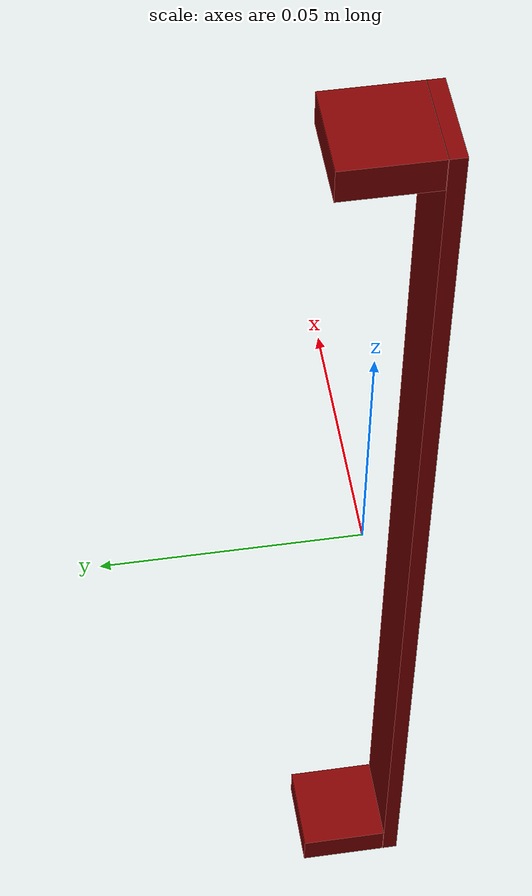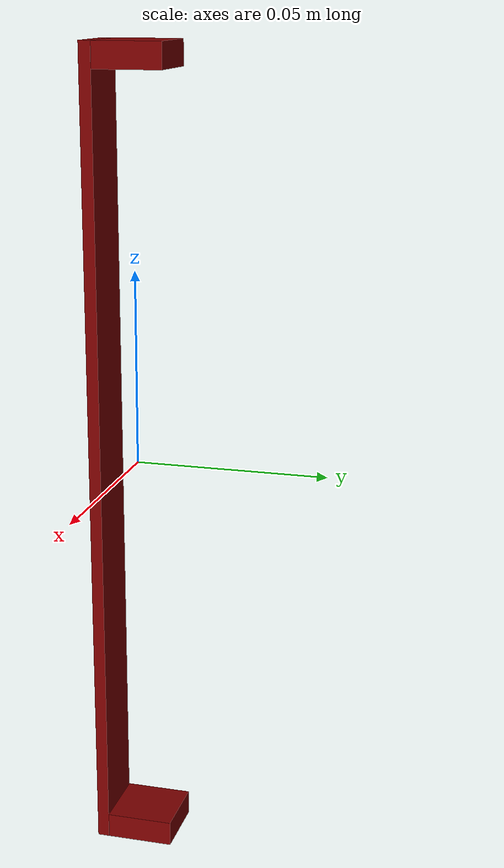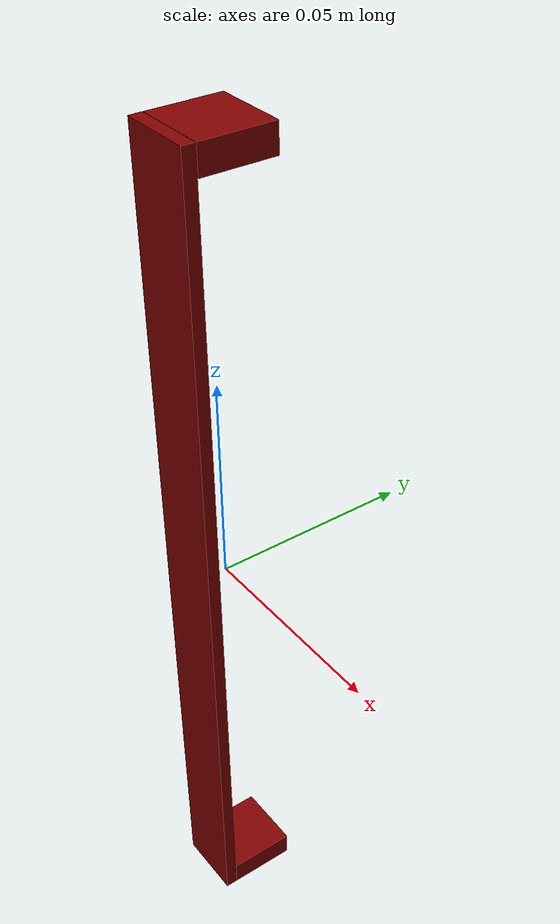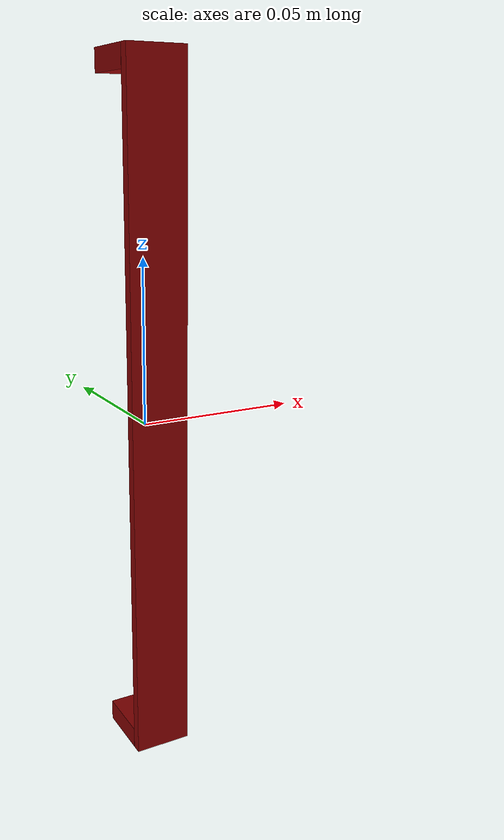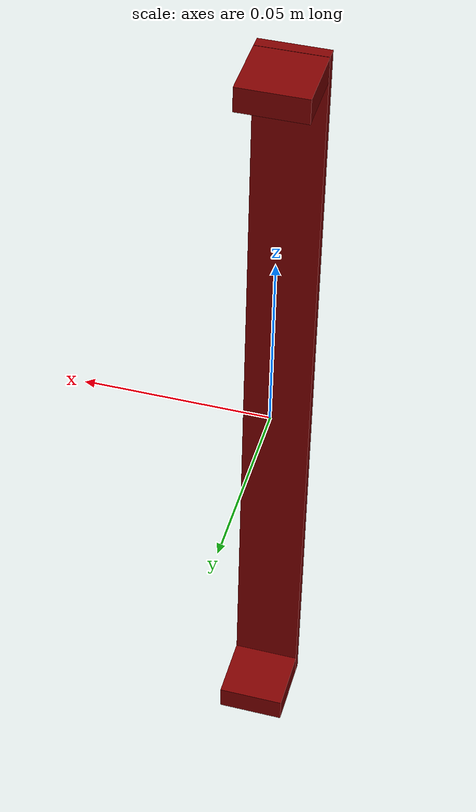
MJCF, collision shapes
<?xml version='1.0' encoding='UTF-8'?>
<mujoco model="model">
  <option timestep="0.002" gravity="0.0 0.0 -9.81"/>
  <compiler angle="radian"/>
  <asset>
    <mesh file="visuals/CabinetHandle025.obj" name="CabinetHandle025_vis"/>
    <texture file="visuals/T_BC001.png" name="tex" type="2d"/>
    <material name="mat" rgba="1 1 1 1.0" texture="tex" shininess="0.4472135901451111" specular="0.3103448502657381"/>
  </asset>
  <default>
    <default class="visual">
      <geom conaffinity="0" contype="0" group="1" type="mesh"/>
    </default>
    <default class="collision">
      <geom group="0" rgba="0.5 0 0 0.5" density="1.0" solref="0.004 1" solimp="0.998 0.998 0.001"/>
    </default>
    <default class="spawn">
      <geom group="0" rgba="1 1 1 0.5" contype="0" conaffinity="0"/>
      <site group="0" rgba="1 1 1 0.5"/>
    </default>
    <default class="region">
      <geom group="1" conaffinity="0" contype="0" rgba="0 1 0 0" mass="0"/>
    </default>
  </default>
  <worldbody>
    <body>
      <body name="object">
        <geom mesh="CabinetHandle025_vis" type="mesh" solimp="0.998 0.998 0.001" solref="0.001 1" friction="0.95 0.3 0.1" class="visual" material="mat"/>
        <geom type="box" pos="0.0 -0.008829286321997643 0.0" size="0.008913720026612282 0.0015267652925103903 0.10607448220252991" quat="1.0 0.0 0.0 0.0" class="collision"/>
        <geom type="box" pos="0.0 0.001576766837388277 0.10278105735778809" size="0.008913720026612282 0.008779286406934261 0.003293429734185338" quat="1.0 0.0 0.0 0.0" class="collision"/>
        <geom type="box" pos="0.0 0.0015767670702189207 -0.10278105735778809" size="0.008913720026612282 0.008779286406934261 0.003293433925136924" quat="1.0 0.0 0.0 0.0" class="collision"/>
        <geom class="region" name="reg_main" type="box" pos="8.847564902936256e-10 4.656612873077393e-10 0.0" size="0.009568626828491689 0.011356053709983827 0.10707447475194931"/>
      </body>
    </body>
  </worldbody>
  <actuator/>
</mujoco>
